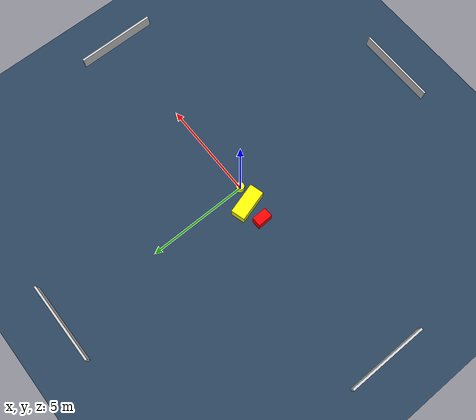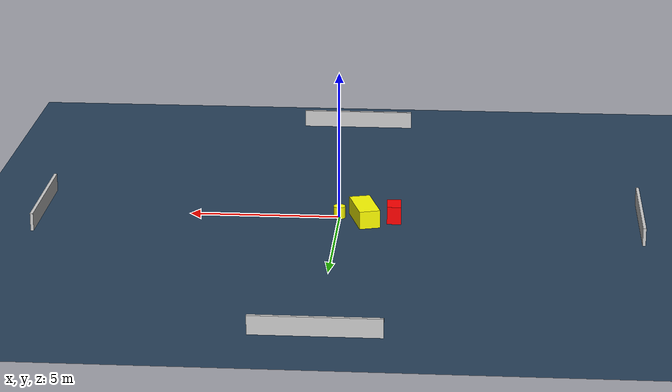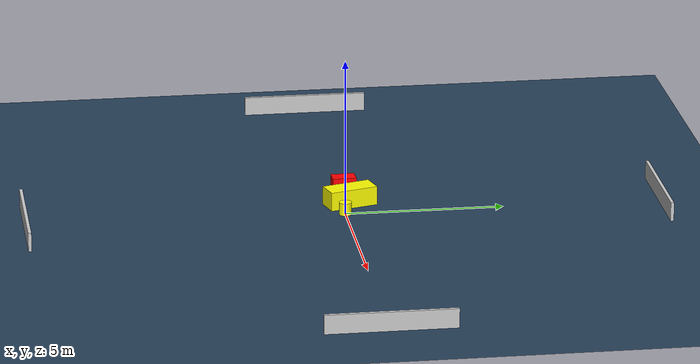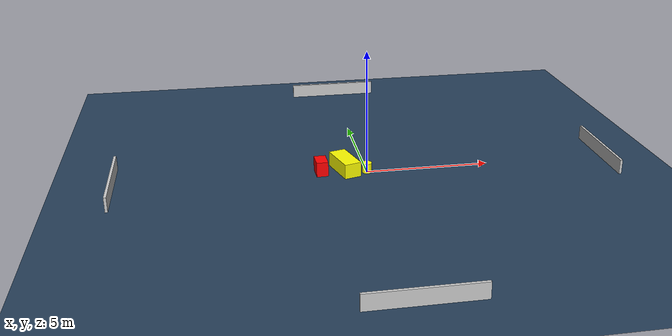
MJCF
<?xml version="1.0" ?>
<mujoco model="generated_environment">
  <option timestep="0.01" integrator="RK4" cone="elliptic"/>
  <default>
    <geom density="1"/>
  </default>
  <asset>
    <texture builtin="gradient" height="3072" name="skybox" rgb1="0.3 0.5 0.7" rgb2="0 0 0" type="skybox" width="512"/>
    <texture builtin="checker" height="300" name="groundplane" rgb1="0.2 0.3 0.4" rgb2="0.1 0.2 0.3" type="2d" width="300"/>
    <material name="groundplane" reflectance="0.2" texrepeat="5 5" texture="groundplane"/>
  </asset>
  <worldbody>
    <light dir="0 0 -1" directional="true" pos="0 0 1.5"/>
    <geom condim="3" friction="0.5 0.005 0.001" material="groundplane" name="floor" pos="0 0 0" size="0 0 0.05" type="plane"/>
    <body name="walls">
      <geom name="wall_1" condim="4" pos="-10.0 0.0 0.3" rgba="0.800000011920929 0.800000011920929 0.800000011920929 1.0" size="0.05 2.0 0.3" type="box"/>
      <geom name="wall_2" condim="4" pos="10.0 0.0 0.3" rgba="0.800000011920929 0.800000011920929 0.800000011920929 1.0" size="0.05 2.0 0.3" type="box"/>
      <geom name="wall_3" condim="4" pos="0.0 -10.0 0.3" rgba="0.800000011920929 0.800000011920929 0.800000011920929 1.0" size="2.0 0.05 0.3" type="box"/>
      <geom name="wall_4" condim="4" pos="0.0 10.0 0.3" rgba="0.800000011920929 0.800000011920929 0.800000011920929 1.0" size="2.0 0.05 0.3" type="box"/>
    </body>
    <body name="robot">
      <joint name="joint_x" type="slide" pos="0 0 0" axis="1 0 0"/>
      <joint name="joint_y" type="slide" pos="0 0 0" axis="0 1 0"/>
      <geom name="robot" type="cylinder" pos="0.0 0.0 0.2" size="0.2 0.2 0.0" mass="5.0" friction="1.0 0.005 0.0001" condim="4" rgba="1.0 1.0 0.0 1.0"/>
    </body>
    <body name="obstacle_1_movable">
      <geom name="obstacle_1_movable" condim="4" pos="-0.8555920975698069 0.2664053489258858 0.3" euler="0 0 16.267755037361926" friction="0.0 0.005 0.001" rgba="1.0 1.0 0.0 1.0" size="0.3492255775409533 0.7801962468331909 0.3" type="box" mass="0.1"/>
      <joint type="free"/>
    </body>
    <body name="obstacle_2_static">
      <geom name="obstacle_2_static" condim="4" pos="-1.8380349687008144 0.1926898014819499 0.3" euler="0 0 182.12829907135807" friction="0.0 0.005 0.001" rgba="1.0 0.0 0.0 1.0" size="0.2353288104797041 0.37550613634639995 0.3" type="box"/>
    </body>
  </worldbody>
  <actuator>
    <motor name="actuator_x" joint="joint_x" gear="1" ctrlrange="-1 1"/>
    <motor name="actuator_y" joint="joint_y" gear="1" ctrlrange="-1 1"/>
  </actuator>
</mujoco>
